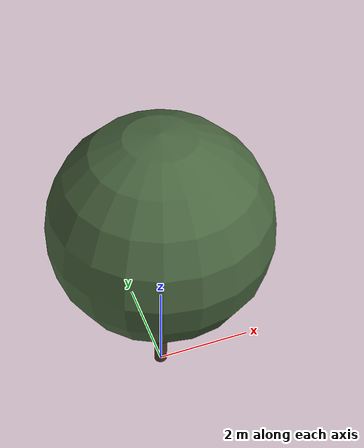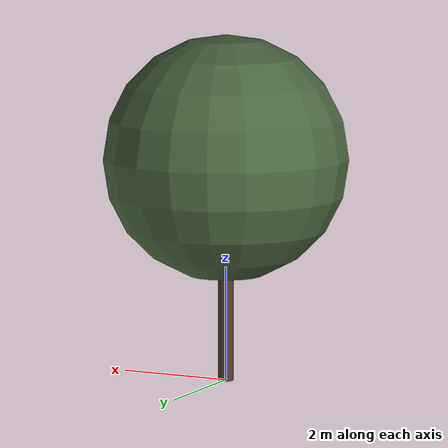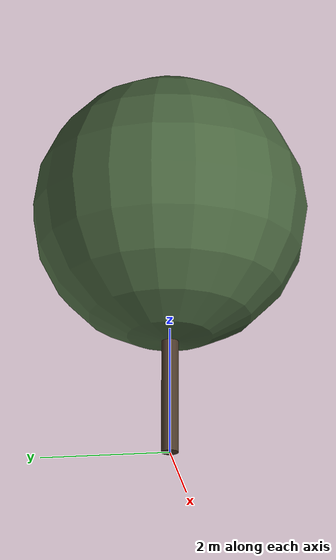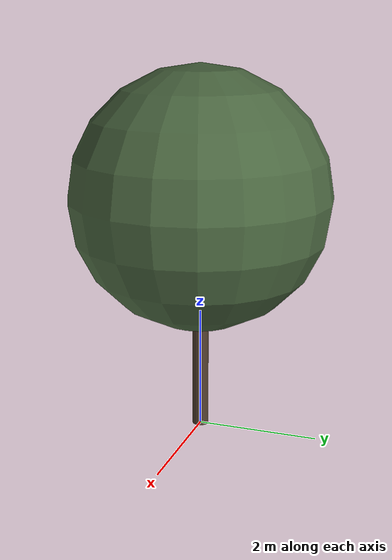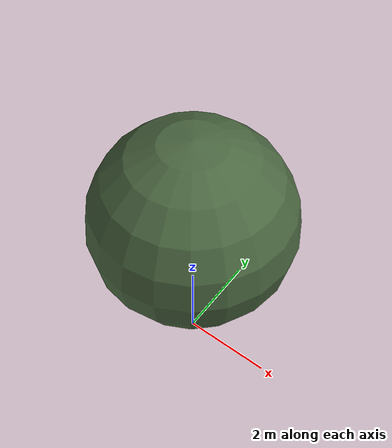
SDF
<?xml version="1.0" ?>
<sdf version="1.10">
  <model name="chene_vert_01">
    <static>true</static>

    <!-- Tronc -->
    <link name="trunk">
      <pose>0 0 1.6390208910252144 0 0 0</pose>
      <visual name="trunk_visual">
        <geometry>
          <cylinder>
            <radius>0.1328922818516312</radius>
            <length>3.278041782050429</length>
          </cylinder>
        </geometry>
        <material>
          <ambient>0.29 0.22 0.16 1</ambient>
          <diffuse>0.29 0.22 0.16 1</diffuse>
          <specular>0.1 0.1 0.1 1</specular>
        </material>
      </visual>
      <collision name="trunk_collision">
        <geometry>
          <cylinder>
            <radius>0.1328922818516312</radius>
            <length>3.278041782050429</length>
          </cylinder>
        </geometry>
      </collision>
    </link>

    <!-- Feuillage -->
    <link name="crown">
      <pose>0 0 3.923593735012198 0 0 0</pose>
      <visual name="crown_visual">
        <geometry>
          <sphere>
              <radius>2.151839843205897</radius>
            </sphere>
        </geometry>
        <material>
          <ambient>0.29 0.40 0.25 1</ambient>
          <diffuse>0.29 0.40 0.25 1</diffuse>
          <specular>0.1 0.1 0.1 1</specular>
        </material>
      </visual>
      <collision name="crown_collision">
        <geometry>
          <sphere>
            <radius>1.7214718745647177</radius>
          </sphere>
        </geometry>
      </collision>
    </link>

    <!-- Joint tronc-feuillage -->
    <joint name="trunk_crown_joint" type="fixed">
      <parent>trunk</parent>
      <child>crown</child>
    </joint>

  </model>
</sdf>
